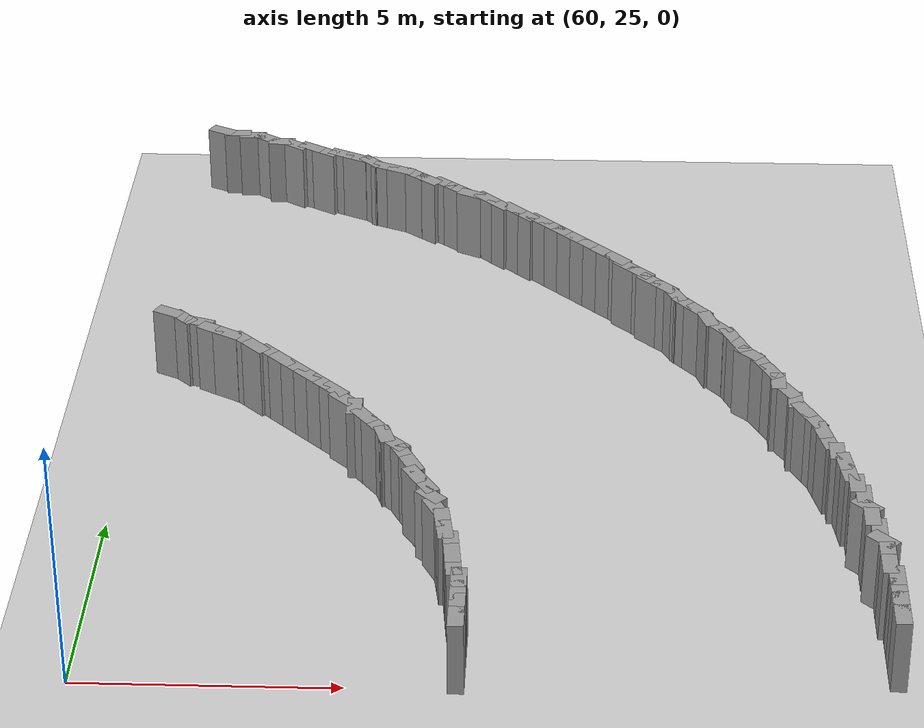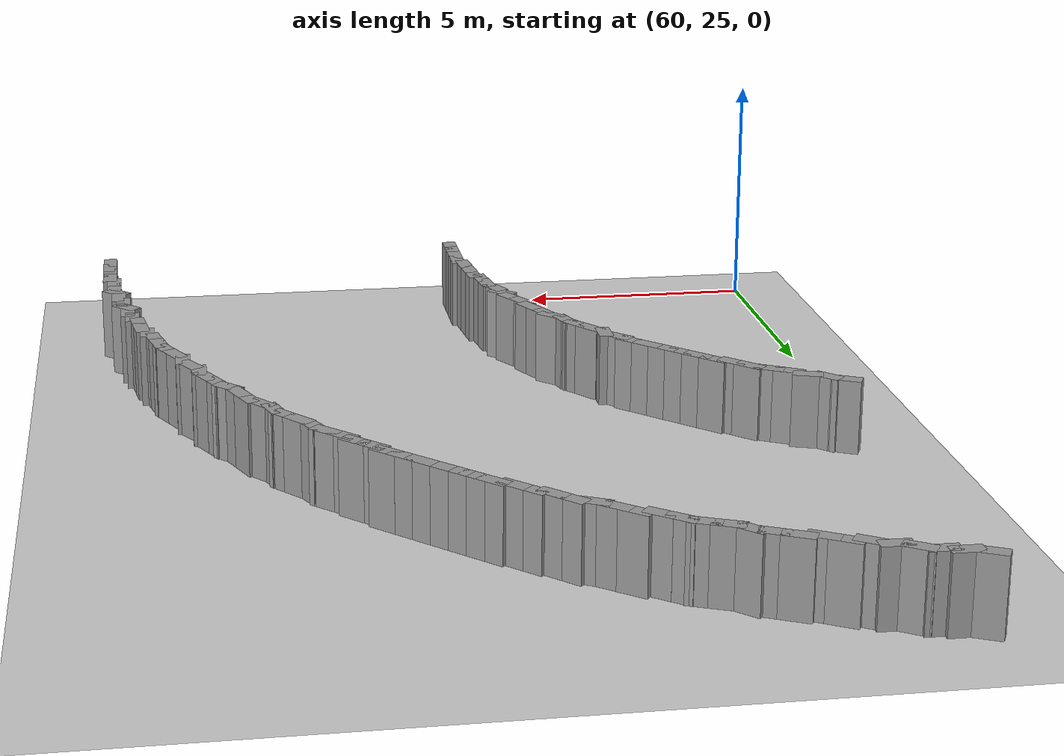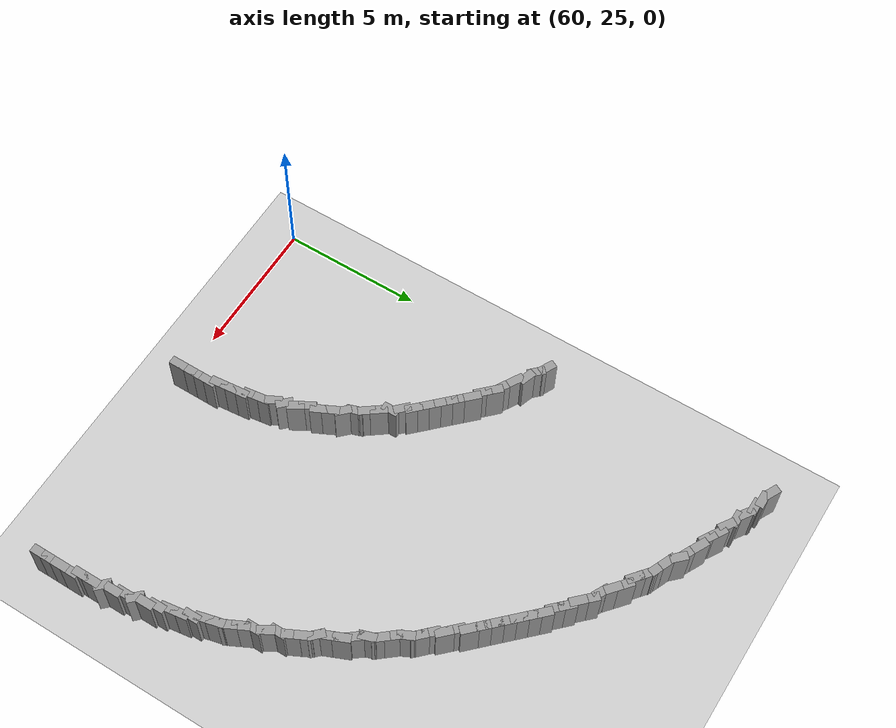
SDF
<sdf version="1.5">
 <world name="test_figure8">
  <include><uri>model://sun</uri></include>
  <include><uri>model://ground_plane</uri></include>
  <model name="curbL_261">
   <static>true</static>
   <pose>74.900 25.519 0.750 0 0 1.571</pose>
   <link name="link">
    <collision name="collision"><geometry><box><size>0.600 0.300 1.500</size></box></geometry></collision>
    <visual name="visual">
     <geometry><box><size>0.600 0.300 1.500</size></box></geometry>
     <material><ambient>0.6 0.6 0.6 1</ambient><diffuse>0.6 0.6 0.6 1</diffuse></material>
    </visual>
   </link>
  </model>
  <model name="curbL_262">
   <static>true</static>
   <pose>74.900 25.919 0.750 0 0 1.571</pose>
   <link name="link">
    <collision name="collision"><geometry><box><size>0.600 0.300 1.500</size></box></geometry></collision>
    <visual name="visual">
     <geometry><box><size>0.600 0.300 1.500</size></box></geometry>
     <material><ambient>0.6 0.6 0.6 1</ambient><diffuse>0.6 0.6 0.6 1</diffuse></material>
    </visual>
   </link>
  </model>
  <model name="curbL_263">
   <static>true</static>
   <pose>74.900 26.319 0.750 0 0 1.571</pose>
   <link name="link">
    <collision name="collision"><geometry><box><size>0.600 0.300 1.500</size></box></geometry></collision>
    <visual name="visual">
     <geometry><box><size>0.600 0.300 1.500</size></box></geometry>
     <material><ambient>0.6 0.6 0.6 1</ambient><diffuse>0.6 0.6 0.6 1</diffuse></material>
    </visual>
   </link>
  </model>
  <model name="curbL_264">
   <static>true</static>
   <pose>74.900 26.719 0.750 0 0 1.571</pose>
   <link name="link">
    <collision name="collision"><geometry><box><size>0.600 0.300 1.500</size></box></geometry></collision>
    <visual name="visual">
     <geometry><box><size>0.600 0.300 1.500</size></box></geometry>
     <material><ambient>0.6 0.6 0.6 1</ambient><diffuse>0.6 0.6 0.6 1</diffuse></material>
    </visual>
   </link>
  </model>
  <model name="curbL_265">
   <static>true</static>
   <pose>74.800 27.078 0.750 0 0 1.571</pose>
   <link name="link">
    <collision name="collision"><geometry><box><size>0.600 0.300 1.500</size></box></geometry></collision>
    <visual name="visual">
     <geometry><box><size>0.600 0.300 1.500</size></box></geometry>
     <material><ambient>0.6 0.6 0.6 1</ambient><diffuse>0.6 0.6 0.6 1</diffuse></material>
    </visual>
   </link>
  </model>
  <model name="curbL_266">
   <static>true</static>
   <pose>74.800 27.478 0.750 0 0 1.571</pose>
   <link name="link">
    <collision name="collision"><geometry><box><size>0.600 0.300 1.500</size></box></geometry></collision>
    <visual name="visual">
     <geometry><box><size>0.600 0.300 1.500</size></box></geometry>
     <material><ambient>0.6 0.6 0.6 1</ambient><diffuse>0.6 0.6 0.6 1</diffuse></material>
    </visual>
   </link>
  </model>
  <model name="curbL_267">
   <static>true</static>
   <pose>74.745 27.855 0.750 0 0 2.356</pose>
   <link name="link">
    <collision name="collision"><geometry><box><size>0.600 0.300 1.500</size></box></geometry></collision>
    <visual name="visual">
     <geometry><box><size>0.600 0.300 1.500</size></box></geometry>
     <material><ambient>0.6 0.6 0.6 1</ambient><diffuse>0.6 0.6 0.6 1</diffuse></material>
    </visual>
   </link>
  </model>
  <model name="curbL_268">
   <static>true</static>
   <pose>74.700 28.236 0.750 0 0 1.571</pose>
   <link name="link">
    <collision name="collision"><geometry><box><size>0.600 0.300 1.500</size></box></geometry></collision>
    <visual name="visual">
     <geometry><box><size>0.600 0.300 1.500</size></box></geometry>
     <material><ambient>0.6 0.6 0.6 1</ambient><diffuse>0.6 0.6 0.6 1</diffuse></material>
    </visual>
   </link>
  </model>
  <model name="curbL_269">
   <static>true</static>
   <pose>74.600 28.595 0.750 0 0 1.571</pose>
   <link name="link">
    <collision name="collision"><geometry><box><size>0.600 0.300 1.500</size></box></geometry></collision>
    <visual name="visual">
     <geometry><box><size>0.600 0.300 1.500</size></box></geometry>
     <material><ambient>0.6 0.6 0.6 1</ambient><diffuse>0.6 0.6 0.6 1</diffuse></material>
    </visual>
   </link>
  </model>
  <model name="curbL_270">
   <static>true</static>
   <pose>74.533 28.967 0.750 0 0 2.356</pose>
   <link name="link">
    <collision name="collision"><geometry><box><size>0.600 0.300 1.500</size></box></geometry></collision>
    <visual name="visual">
     <geometry><box><size>0.600 0.300 1.500</size></box></geometry>
     <material><ambient>0.6 0.6 0.6 1</ambient><diffuse>0.6 0.6 0.6 1</diffuse></material>
    </visual>
   </link>
  </model>
  <model name="curbL_271">
   <static>true</static>
   <pose>74.500 29.353 0.750 0 0 1.571</pose>
   <link name="link">
    <collision name="collision"><geometry><box><size>0.600 0.300 1.500</size></box></geometry></collision>
    <visual name="visual">
     <geometry><box><size>0.600 0.300 1.500</size></box></geometry>
     <material><ambient>0.6 0.6 0.6 1</ambient><diffuse>0.6 0.6 0.6 1</diffuse></material>
    </visual>
   </link>
  </model>
  <model name="curbL_272">
   <static>true</static>
   <pose>74.400 29.712 0.750 0 0 1.571</pose>
   <link name="link">
    <collision name="collision"><geometry><box><size>0.600 0.300 1.500</size></box></geometry></collision>
    <visual name="visual">
     <geometry><box><size>0.600 0.300 1.500</size></box></geometry>
     <material><ambient>0.6 0.6 0.6 1</ambient><diffuse>0.6 0.6 0.6 1</diffuse></material>
    </visual>
   </link>
  </model>
  <model name="curbL_273">
   <static>true</static>
   <pose>74.276 30.069 0.750 0 0 1.713</pose>
   <link name="link">
    <collision name="collision"><geometry><box><size>0.600 0.300 1.500</size></box></geometry></collision>
    <visual name="visual">
     <geometry><box><size>0.600 0.300 1.500</size></box></geometry>
     <material><ambient>0.6 0.6 0.6 1</ambient><diffuse>0.6 0.6 0.6 1</diffuse></material>
    </visual>
   </link>
  </model>
  <model name="curbL_274">
   <static>true</static>
   <pose>74.219 30.465 0.750 0 0 1.713</pose>
   <link name="link">
    <collision name="collision"><geometry><box><size>0.600 0.300 1.500</size></box></geometry></collision>
    <visual name="visual">
     <geometry><box><size>0.600 0.300 1.500</size></box></geometry>
     <material><ambient>0.6 0.6 0.6 1</ambient><diffuse>0.6 0.6 0.6 1</diffuse></material>
    </visual>
   </link>
  </model>
  <model name="curbL_275">
   <static>true</static>
   <pose>74.100 30.822 0.750 0 0 1.571</pose>
   <link name="link">
    <collision name="collision"><geometry><box><size>0.600 0.300 1.500</size></box></geometry></collision>
    <visual name="visual">
     <geometry><box><size>0.600 0.300 1.500</size></box></geometry>
     <material><ambient>0.6 0.6 0.6 1</ambient><diffuse>0.6 0.6 0.6 1</diffuse></material>
    </visual>
   </link>
  </model>
  <model name="curbL_276">
   <static>true</static>
   <pose>73.956 31.175 0.750 0 0 1.816</pose>
   <link name="link">
    <collision name="collision"><geometry><box><size>0.600 0.300 1.500</size></box></geometry></collision>
    <visual name="visual">
     <geometry><box><size>0.600 0.300 1.500</size></box></geometry>
     <material><ambient>0.6 0.6 0.6 1</ambient><diffuse>0.6 0.6 0.6 1</diffuse></material>
    </visual>
   </link>
  </model>
  <model name="curbL_277">
   <static>true</static>
   <pose>73.859 31.563 0.750 0 0 1.816</pose>
   <link name="link">
    <collision name="collision"><geometry><box><size>0.600 0.300 1.500</size></box></geometry></collision>
    <visual name="visual">
     <geometry><box><size>0.600 0.300 1.500</size></box></geometry>
     <material><ambient>0.6 0.6 0.6 1</ambient><diffuse>0.6 0.6 0.6 1</diffuse></material>
    </visual>
   </link>
  </model>
  <model name="curbL_278">
   <static>true</static>
   <pose>73.730 31.939 0.750 0 0 2.034</pose>
   <link name="link">
    <collision name="collision"><geometry><box><size>0.600 0.300 1.500</size></box></geometry></collision>
    <visual name="visual">
     <geometry><box><size>0.600 0.300 1.500</size></box></geometry>
     <material><ambient>0.6 0.6 0.6 1</ambient><diffuse>0.6 0.6 0.6 1</diffuse></material>
    </visual>
   </link>
  </model>
  <model name="curbL_279">
   <static>true</static>
   <pose>73.551 32.297 0.750 0 0 2.034</pose>
   <link name="link">
    <collision name="collision"><geometry><box><size>0.600 0.300 1.500</size></box></geometry></collision>
    <visual name="visual">
     <geometry><box><size>0.600 0.300 1.500</size></box></geometry>
     <material><ambient>0.6 0.6 0.6 1</ambient><diffuse>0.6 0.6 0.6 1</diffuse></material>
    </visual>
   </link>
  </model>
  <model name="curbL_280">
   <static>true</static>
   <pose>73.400 32.661 0.750 0 0 1.571</pose>
   <link name="link">
    <collision name="collision"><geometry><box><size>0.600 0.300 1.500</size></box></geometry></collision>
    <visual name="visual">
     <geometry><box><size>0.600 0.300 1.500</size></box></geometry>
     <material><ambient>0.6 0.6 0.6 1</ambient><diffuse>0.6 0.6 0.6 1</diffuse></material>
    </visual>
   </link>
  </model>
  <model name="curbL_281">
   <static>true</static>
   <pose>73.266 33.024 0.750 0 0 2.111</pose>
   <link name="link">
    <collision name="collision"><geometry><box><size>0.600 0.300 1.500</size></box></geometry></collision>
    <visual name="visual">
     <geometry><box><size>0.600 0.300 1.500</size></box></geometry>
     <material><ambient>0.6 0.6 0.6 1</ambient><diffuse>0.6 0.6 0.6 1</diffuse></material>
    </visual>
   </link>
  </model>
  <model name="curbL_282">
   <static>true</static>
   <pose>73.100 33.378 0.750 0 0 1.571</pose>
   <link name="link">
    <collision name="collision"><geometry><box><size>0.600 0.300 1.500</size></box></geometry></collision>
    <visual name="visual">
     <geometry><box><size>0.600 0.300 1.500</size></box></geometry>
     <material><ambient>0.6 0.6 0.6 1</ambient><diffuse>0.6 0.6 0.6 1</diffuse></material>
    </visual>
   </link>
  </model>
  <model name="curbL_283">
   <static>true</static>
   <pose>72.976 33.749 0.750 0 0 2.034</pose>
   <link name="link">
    <collision name="collision"><geometry><box><size>0.600 0.300 1.500</size></box></geometry></collision>
    <visual name="visual">
     <geometry><box><size>0.600 0.300 1.500</size></box></geometry>
     <material><ambient>0.6 0.6 0.6 1</ambient><diffuse>0.6 0.6 0.6 1</diffuse></material>
    </visual>
   </link>
  </model>
  <model name="curbL_284">
   <static>true</static>
   <pose>72.797 34.107 0.750 0 0 2.034</pose>
   <link name="link">
    <collision name="collision"><geometry><box><size>0.600 0.300 1.500</size></box></geometry></collision>
    <visual name="visual">
     <geometry><box><size>0.600 0.300 1.500</size></box></geometry>
     <material><ambient>0.6 0.6 0.6 1</ambient><diffuse>0.6 0.6 0.6 1</diffuse></material>
    </visual>
   </link>
  </model>
  <model name="curbL_285">
   <static>true</static>
   <pose>72.570 34.430 0.750 0 0 2.356</pose>
   <link name="link">
    <collision name="collision"><geometry><box><size>0.600 0.300 1.500</size></box></geometry></collision>
    <visual name="visual">
     <geometry><box><size>0.600 0.300 1.500</size></box></geometry>
     <material><ambient>0.6 0.6 0.6 1</ambient><diffuse>0.6 0.6 0.6 1</diffuse></material>
    </visual>
   </link>
  </model>
  <model name="curbL_286">
   <static>true</static>
   <pose>72.381 34.777 0.750 0 0 1.976</pose>
   <link name="link">
    <collision name="collision"><geometry><box><size>0.600 0.300 1.500</size></box></geometry></collision>
    <visual name="visual">
     <geometry><box><size>0.600 0.300 1.500</size></box></geometry>
     <material><ambient>0.6 0.6 0.6 1</ambient><diffuse>0.6 0.6 0.6 1</diffuse></material>
    </visual>
   </link>
  </model>
  <model name="curbL_287">
   <static>true</static>
   <pose>72.224 35.144 0.750 0 0 1.976</pose>
   <link name="link">
    <collision name="collision"><geometry><box><size>0.600 0.300 1.500</size></box></geometry></collision>
    <visual name="visual">
     <geometry><box><size>0.600 0.300 1.500</size></box></geometry>
     <material><ambient>0.6 0.6 0.6 1</ambient><diffuse>0.6 0.6 0.6 1</diffuse></material>
    </visual>
   </link>
  </model>
  <model name="curbL_288">
   <static>true</static>
   <pose>71.988 35.465 0.750 0 0 2.246</pose>
   <link name="link">
    <collision name="collision"><geometry><box><size>0.600 0.300 1.500</size></box></geometry></collision>
    <visual name="visual">
     <geometry><box><size>0.600 0.300 1.500</size></box></geometry>
     <material><ambient>0.6 0.6 0.6 1</ambient><diffuse>0.6 0.6 0.6 1</diffuse></material>
    </visual>
   </link>
  </model>
  <model name="curbL_289">
   <static>true</static>
   <pose>71.769 35.794 0.750 0 0 1.893</pose>
   <link name="link">
    <collision name="collision"><geometry><box><size>0.600 0.300 1.500</size></box></geometry></collision>
    <visual name="visual">
     <geometry><box><size>0.600 0.300 1.500</size></box></geometry>
     <material><ambient>0.6 0.6 0.6 1</ambient><diffuse>0.6 0.6 0.6 1</diffuse></material>
    </visual>
   </link>
  </model>
  <model name="curbL_290">
   <static>true</static>
   <pose>71.583 36.141 0.750 0 0 2.266</pose>
   <link name="link">
    <collision name="collision"><geometry><box><size>0.600 0.300 1.500</size></box></geometry></collision>
    <visual name="visual">
     <geometry><box><size>0.600 0.300 1.500</size></box></geometry>
     <material><ambient>0.6 0.6 0.6 1</ambient><diffuse>0.6 0.6 0.6 1</diffuse></material>
    </visual>
   </link>
  </model>
  <model name="curbL_291">
   <static>true</static>
   <pose>71.327 36.448 0.750 0 0 2.266</pose>
   <link name="link">
    <collision name="collision"><geometry><box><size>0.600 0.300 1.500</size></box></geometry></collision>
    <visual name="visual">
     <geometry><box><size>0.600 0.300 1.500</size></box></geometry>
     <material><ambient>0.6 0.6 0.6 1</ambient><diffuse>0.6 0.6 0.6 1</diffuse></material>
    </visual>
   </link>
  </model>
  <model name="curbL_292">
   <static>true</static>
   <pose>71.110 36.781 0.750 0 0 2.034</pose>
   <link name="link">
    <collision name="collision"><geometry><box><size>0.600 0.300 1.500</size></box></geometry></collision>
    <visual name="visual">
     <geometry><box><size>0.600 0.300 1.500</size></box></geometry>
     <material><ambient>0.6 0.6 0.6 1</ambient><diffuse>0.6 0.6 0.6 1</diffuse></material>
    </visual>
   </link>
  </model>
  <model name="curbL_293">
   <static>true</static>
   <pose>70.891 37.109 0.750 0 0 2.356</pose>
   <link name="link">
    <collision name="collision"><geometry><box><size>0.600 0.300 1.500</size></box></geometry></collision>
    <visual name="visual">
     <geometry><box><size>0.600 0.300 1.500</size></box></geometry>
     <material><ambient>0.6 0.6 0.6 1</ambient><diffuse>0.6 0.6 0.6 1</diffuse></material>
    </visual>
   </link>
  </model>
  <model name="curbL_294">
   <static>true</static>
   <pose>70.608 37.392 0.750 0 0 2.356</pose>
   <link name="link">
    <collision name="collision"><geometry><box><size>0.600 0.300 1.500</size></box></geometry></collision>
    <visual name="visual">
     <geometry><box><size>0.600 0.300 1.500</size></box></geometry>
     <material><ambient>0.6 0.6 0.6 1</ambient><diffuse>0.6 0.6 0.6 1</diffuse></material>
    </visual>
   </link>
  </model>
  <model name="curbL_295">
   <static>true</static>
   <pose>70.396 37.704 0.750 0 0 2.356</pose>
   <link name="link">
    <collision name="collision"><geometry><box><size>0.600 0.300 1.500</size></box></geometry></collision>
    <visual name="visual">
     <geometry><box><size>0.600 0.300 1.500</size></box></geometry>
     <material><ambient>0.6 0.6 0.6 1</ambient><diffuse>0.6 0.6 0.6 1</diffuse></material>
    </visual>
   </link>
  </model>
  <model name="curbL_296">
   <static>true</static>
   <pose>70.113 37.987 0.750 0 0 2.356</pose>
   <link name="link">
    <collision name="collision"><geometry><box><size>0.600 0.300 1.500</size></box></geometry></collision>
    <visual name="visual">
     <geometry><box><size>0.600 0.300 1.500</size></box></geometry>
     <material><ambient>0.6 0.6 0.6 1</ambient><diffuse>0.6 0.6 0.6 1</diffuse></material>
    </visual>
   </link>
  </model>
  <model name="curbL_297">
   <static>true</static>
   <pose>69.901 38.299 0.750 0 0 2.356</pose>
   <link name="link">
    <collision name="collision"><geometry><box><size>0.600 0.300 1.500</size></box></geometry></collision>
    <visual name="visual">
     <geometry><box><size>0.600 0.300 1.500</size></box></geometry>
     <material><ambient>0.6 0.6 0.6 1</ambient><diffuse>0.6 0.6 0.6 1</diffuse></material>
    </visual>
   </link>
  </model>
  <model name="curbL_298">
   <static>true</static>
   <pose>69.618 38.582 0.750 0 0 2.356</pose>
   <link name="link">
    <collision name="collision"><geometry><box><size>0.600 0.300 1.500</size></box></geometry></collision>
    <visual name="visual">
     <geometry><box><size>0.600 0.300 1.500</size></box></geometry>
     <material><ambient>0.6 0.6 0.6 1</ambient><diffuse>0.6 0.6 0.6 1</diffuse></material>
    </visual>
   </link>
  </model>
  <model name="curbL_299">
   <static>true</static>
   <pose>69.335 38.865 0.750 0 0 2.356</pose>
   <link name="link">
    <collision name="collision"><geometry><box><size>0.600 0.300 1.500</size></box></geometry></collision>
    <visual name="visual">
     <geometry><box><size>0.600 0.300 1.500</size></box></geometry>
     <material><ambient>0.6 0.6 0.6 1</ambient><diffuse>0.6 0.6 0.6 1</diffuse></material>
    </visual>
   </link>
  </model>
  <model name="curbL_300">
   <static>true</static>
   <pose>69.052 39.148 0.750 0 0 2.356</pose>
   <link name="link">
    <collision name="collision"><geometry><box><size>0.600 0.300 1.500</size></box></geometry></collision>
    <visual name="visual">
     <geometry><box><size>0.600 0.300 1.500</size></box></geometry>
     <material><ambient>0.6 0.6 0.6 1</ambient><diffuse>0.6 0.6 0.6 1</diffuse></material>
    </visual>
   </link>
  </model>
  <model name="curbL_301">
   <static>true</static>
   <pose>68.769 39.431 0.750 0 0 2.356</pose>
   <link name="link">
    <collision name="collision"><geometry><box><size>0.600 0.300 1.500</size></box></geometry></collision>
    <visual name="visual">
     <geometry><box><size>0.600 0.300 1.500</size></box></geometry>
     <material><ambient>0.6 0.6 0.6 1</ambient><diffuse>0.6 0.6 0.6 1</diffuse></material>
    </visual>
   </link>
  </model>
  <model name="curbL_302">
   <static>true</static>
   <pose>68.486 39.714 0.750 0 0 2.356</pose>
   <link name="link">
    <collision name="collision"><geometry><box><size>0.600 0.300 1.500</size></box></geometry></collision>
    <visual name="visual">
     <geometry><box><size>0.600 0.300 1.500</size></box></geometry>
     <material><ambient>0.6 0.6 0.6 1</ambient><diffuse>0.6 0.6 0.6 1</diffuse></material>
    </visual>
   </link>
  </model>
  <model name="curbL_303">
   <static>true</static>
   <pose>68.204 39.996 0.750 0 0 2.356</pose>
   <link name="link">
    <collision name="collision"><geometry><box><size>0.600 0.300 1.500</size></box></geometry></collision>
    <visual name="visual">
     <geometry><box><size>0.600 0.300 1.500</size></box></geometry>
     <material><ambient>0.6 0.6 0.6 1</ambient><diffuse>0.6 0.6 0.6 1</diffuse></material>
    </visual>
   </link>
  </model>
  <model name="curbL_304">
   <static>true</static>
   <pose>67.891 40.209 0.750 0 0 2.356</pose>
   <link name="link">
    <collision name="collision"><geometry><box><size>0.600 0.300 1.500</size></box></geometry></collision>
    <visual name="visual">
     <geometry><box><size>0.600 0.300 1.500</size></box></geometry>
     <material><ambient>0.6 0.6 0.6 1</ambient><diffuse>0.6 0.6 0.6 1</diffuse></material>
    </visual>
   </link>
  </model>
  <model name="curbL_305">
   <static>true</static>
   <pose>67.609 40.491 0.750 0 0 2.356</pose>
   <link name="link">
    <collision name="collision"><geometry><box><size>0.600 0.300 1.500</size></box></geometry></collision>
    <visual name="visual">
     <geometry><box><size>0.600 0.300 1.500</size></box></geometry>
     <material><ambient>0.6 0.6 0.6 1</ambient><diffuse>0.6 0.6 0.6 1</diffuse></material>
    </visual>
   </link>
  </model>
  <model name="curbL_306">
   <static>true</static>
   <pose>67.297 40.703 0.750 0 0 2.356</pose>
   <link name="link">
    <collision name="collision"><geometry><box><size>0.600 0.300 1.500</size></box></geometry></collision>
    <visual name="visual">
     <geometry><box><size>0.600 0.300 1.500</size></box></geometry>
     <material><ambient>0.6 0.6 0.6 1</ambient><diffuse>0.6 0.6 0.6 1</diffuse></material>
    </visual>
   </link>
  </model>
  <model name="curbL_307">
   <static>true</static>
   <pose>67.014 40.986 0.750 0 0 2.356</pose>
   <link name="link">
    <collision name="collision"><geometry><box><size>0.600 0.300 1.500</size></box></geometry></collision>
    <visual name="visual">
     <geometry><box><size>0.600 0.300 1.500</size></box></geometry>
     <material><ambient>0.6 0.6 0.6 1</ambient><diffuse>0.6 0.6 0.6 1</diffuse></material>
    </visual>
   </link>
  </model>
  <model name="curbL_308">
   <static>true</static>
   <pose>66.660 41.170 0.750 0 0 2.678</pose>
   <link name="link">
    <collision name="collision"><geometry><box><size>0.600 0.300 1.500</size></box></geometry></collision>
    <visual name="visual">
     <geometry><box><size>0.600 0.300 1.500</size></box></geometry>
     <material><ambient>0.6 0.6 0.6 1</ambient><diffuse>0.6 0.6 0.6 1</diffuse></material>
    </visual>
   </link>
  </model>
  <model name="curbL_309">
   <static>true</static>
   <pose>66.344 41.413 0.750 0 0 2.447</pose>
   <link name="link">
    <collision name="collision"><geometry><box><size>0.600 0.300 1.500</size></box></geometry></collision>
    <visual name="visual">
     <geometry><box><size>0.600 0.300 1.500</size></box></geometry>
     <material><ambient>0.6 0.6 0.6 1</ambient><diffuse>0.6 0.6 0.6 1</diffuse></material>
    </visual>
   </link>
  </model>
  <model name="curbL_310">
   <static>true</static>
   <pose>66.037 41.670 0.750 0 0 2.447</pose>
   <link name="link">
    <collision name="collision"><geometry><box><size>0.600 0.300 1.500</size></box></geometry></collision>
    <visual name="visual">
     <geometry><box><size>0.600 0.300 1.500</size></box></geometry>
     <material><ambient>0.6 0.6 0.6 1</ambient><diffuse>0.6 0.6 0.6 1</diffuse></material>
    </visual>
   </link>
  </model>
  <model name="curbL_311">
   <static>true</static>
   <pose>65.672 41.823 0.750 0 0 2.467</pose>
   <link name="link">
    <collision name="collision"><geometry><box><size>0.600 0.300 1.500</size></box></geometry></collision>
    <visual name="visual">
     <geometry><box><size>0.600 0.300 1.500</size></box></geometry>
     <material><ambient>0.6 0.6 0.6 1</ambient><diffuse>0.6 0.6 0.6 1</diffuse></material>
    </visual>
   </link>
  </model>
  <model name="curbL_312">
   <static>true</static>
   <pose>65.359 42.072 0.750 0 0 2.467</pose>
   <link name="link">
    <collision name="collision"><geometry><box><size>0.600 0.300 1.500</size></box></geometry></collision>
    <visual name="visual">
     <geometry><box><size>0.600 0.300 1.500</size></box></geometry>
     <material><ambient>0.6 0.6 0.6 1</ambient><diffuse>0.6 0.6 0.6 1</diffuse></material>
    </visual>
   </link>
  </model>
  <model name="curbL_313">
   <static>true</static>
   <pose>65.020 42.277 0.750 0 0 2.737</pose>
   <link name="link">
    <collision name="collision"><geometry><box><size>0.600 0.300 1.500</size></box></geometry></collision>
    <visual name="visual">
     <geometry><box><size>0.600 0.300 1.500</size></box></geometry>
     <material><ambient>0.6 0.6 0.6 1</ambient><diffuse>0.6 0.6 0.6 1</diffuse></material>
    </visual>
   </link>
  </model>
  <model name="curbL_314">
   <static>true</static>
   <pose>64.652 42.435 0.750 0 0 2.737</pose>
   <link name="link">
    <collision name="collision"><geometry><box><size>0.600 0.300 1.500</size></box></geometry></collision>
    <visual name="visual">
     <geometry><box><size>0.600 0.300 1.500</size></box></geometry>
     <material><ambient>0.6 0.6 0.6 1</ambient><diffuse>0.6 0.6 0.6 1</diffuse></material>
    </visual>
   </link>
  </model>
  <model name="curbL_315">
   <static>true</static>
   <pose>64.334 42.666 0.750 0 0 2.356</pose>
   <link name="link">
    <collision name="collision"><geometry><box><size>0.600 0.300 1.500</size></box></geometry></collision>
    <visual name="visual">
     <geometry><box><size>0.600 0.300 1.500</size></box></geometry>
     <material><ambient>0.6 0.6 0.6 1</ambient><diffuse>0.6 0.6 0.6 1</diffuse></material>
    </visual>
   </link>
  </model>
  <model name="curbL_316">
   <static>true</static>
   <pose>63.986 42.857 0.750 0 0 2.678</pose>
   <link name="link">
    <collision name="collision"><geometry><box><size>0.600 0.300 1.500</size></box></geometry></collision>
    <visual name="visual">
     <geometry><box><size>0.600 0.300 1.500</size></box></geometry>
     <material><ambient>0.6 0.6 0.6 1</ambient><diffuse>0.6 0.6 0.6 1</diffuse></material>
    </visual>
   </link>
  </model>
  <model name="curbL_317">
   <static>true</static>
   <pose>63.628 43.036 0.750 0 0 2.678</pose>
   <link name="link">
    <collision name="collision"><geometry><box><size>0.600 0.300 1.500</size></box></geometry></collision>
    <visual name="visual">
     <geometry><box><size>0.600 0.300 1.500</size></box></geometry>
     <material><ambient>0.6 0.6 0.6 1</ambient><diffuse>0.6 0.6 0.6 1</diffuse></material>
    </visual>
   </link>
  </model>
  <model name="curbL_318">
   <static>true</static>
   <pose>63.251 43.129 0.750 0 0 2.601</pose>
   <link name="link">
    <collision name="collision"><geometry><box><size>0.600 0.300 1.500</size></box></geometry></collision>
    <visual name="visual">
     <geometry><box><size>0.600 0.300 1.500</size></box></geometry>
     <material><ambient>0.6 0.6 0.6 1</ambient><diffuse>0.6 0.6 0.6 1</diffuse></material>
    </visual>
   </link>
  </model>
  <model name="curbL_319">
   <static>true</static>
   <pose>62.908 43.335 0.750 0 0 2.601</pose>
   <link name="link">
    <collision name="collision"><geometry><box><size>0.600 0.300 1.500</size></box></geometry></collision>
    <visual name="visual">
     <geometry><box><size>0.600 0.300 1.500</size></box></geometry>
     <material><ambient>0.6 0.6 0.6 1</ambient><diffuse>0.6 0.6 0.6 1</diffuse></material>
    </visual>
   </link>
  </model>
  <model name="curbL_320">
   <static>true</static>
   <pose>62.538 43.441 0.750 0 0 2.554</pose>
   <link name="link">
    <collision name="collision"><geometry><box><size>0.600 0.300 1.500</size></box></geometry></collision>
    <visual name="visual">
     <geometry><box><size>0.600 0.300 1.500</size></box></geometry>
     <material><ambient>0.6 0.6 0.6 1</ambient><diffuse>0.6 0.6 0.6 1</diffuse></material>
    </visual>
   </link>
  </model>
  <model name="curbL_321">
   <static>true</static>
   <pose>62.187 43.600 0.750 0 0 3.142</pose>
   <link name="link">
    <collision name="collision"><geometry><box><size>0.600 0.300 1.500</size></box></geometry></collision>
    <visual name="visual">
     <geometry><box><size>0.600 0.300 1.500</size></box></geometry>
     <material><ambient>0.6 0.6 0.6 1</ambient><diffuse>0.6 0.6 0.6 1</diffuse></material>
    </visual>
   </link>
  </model>
  <model name="curbL_322">
   <static>true</static>
   <pose>61.839 43.774 0.750 0 0 2.554</pose>
   <link name="link">
    <collision name="collision"><geometry><box><size>0.600 0.300 1.500</size></box></geometry></collision>
    <visual name="visual">
     <geometry><box><size>0.600 0.300 1.500</size></box></geometry>
     <material><ambient>0.6 0.6 0.6 1</ambient><diffuse>0.6 0.6 0.6 1</diffuse></material>
    </visual>
   </link>
  </model>
  <model name="curbL_323">
   <static>true</static>
   <pose>61.489 43.900 0.750 0 0 3.142</pose>
   <link name="link">
    <collision name="collision"><geometry><box><size>0.600 0.300 1.500</size></box></geometry></collision>
    <visual name="visual">
     <geometry><box><size>0.600 0.300 1.500</size></box></geometry>
     <material><ambient>0.6 0.6 0.6 1</ambient><diffuse>0.6 0.6 0.6 1</diffuse></material>
    </visual>
   </link>
  </model>
  <model name="curbL_324">
   <static>true</static>
   <pose>61.130 44.000 0.750 0 0 3.142</pose>
   <link name="link">
    <collision name="collision"><geometry><box><size>0.600 0.300 1.500</size></box></geometry></collision>
    <visual name="visual">
     <geometry><box><size>0.600 0.300 1.500</size></box></geometry>
     <material><ambient>0.6 0.6 0.6 1</ambient><diffuse>0.6 0.6 0.6 1</diffuse></material>
    </visual>
   </link>
  </model>
  <model name="curbL_325">
   <static>true</static>
   <pose>60.759 44.121 0.750 0 0 2.678</pose>
   <link name="link">
    <collision name="collision"><geometry><box><size>0.600 0.300 1.500</size></box></geometry></collision>
    <visual name="visual">
     <geometry><box><size>0.600 0.300 1.500</size></box></geometry>
     <material><ambient>0.6 0.6 0.6 1</ambient><diffuse>0.6 0.6 0.6 1</diffuse></material>
    </visual>
   </link>
  </model>
  <model name="curbR_15">
   <static>true</static>
   <pose>60.576 35.712 0.750 0 0 -0.464</pose>
   <link name="link">
    <collision name="collision"><geometry><box><size>0.600 0.300 1.500</size></box></geometry></collision>
    <visual name="visual">
     <geometry><box><size>0.600 0.300 1.500</size></box></geometry>
     <material><ambient>0.6 0.6 0.6 1</ambient><diffuse>0.6 0.6 0.6 1</diffuse></material>
    </visual>
   </link>
  </model>
  <model name="curbR_16">
   <static>true</static>
   <pose>60.906 35.494 0.750 0 0 -0.785</pose>
   <link name="link">
    <collision name="collision"><geometry><box><size>0.600 0.300 1.500</size></box></geometry></collision>
    <visual name="visual">
     <geometry><box><size>0.600 0.300 1.500</size></box></geometry>
     <material><ambient>0.6 0.6 0.6 1</ambient><diffuse>0.6 0.6 0.6 1</diffuse></material>
    </visual>
   </link>
  </model>
  <model name="curbR_17">
   <static>true</static>
   <pose>61.253 35.316 0.750 0 0 -0.322</pose>
   <link name="link">
    <collision name="collision"><geometry><box><size>0.600 0.300 1.500</size></box></geometry></collision>
    <visual name="visual">
     <geometry><box><size>0.600 0.300 1.500</size></box></geometry>
     <material><ambient>0.6 0.6 0.6 1</ambient><diffuse>0.6 0.6 0.6 1</diffuse></material>
    </visual>
   </link>
  </model>
  <model name="curbR_18">
   <static>true</static>
   <pose>61.559 35.067 0.750 0 0 -0.519</pose>
   <link name="link">
    <collision name="collision"><geometry><box><size>0.600 0.300 1.500</size></box></geometry></collision>
    <visual name="visual">
     <geometry><box><size>0.600 0.300 1.500</size></box></geometry>
     <material><ambient>0.6 0.6 0.6 1</ambient><diffuse>0.6 0.6 0.6 1</diffuse></material>
    </visual>
   </link>
  </model>
  <model name="curbR_19">
   <static>true</static>
   <pose>61.906 34.868 0.750 0 0 -0.519</pose>
   <link name="link">
    <collision name="collision"><geometry><box><size>0.600 0.300 1.500</size></box></geometry></collision>
    <visual name="visual">
     <geometry><box><size>0.600 0.300 1.500</size></box></geometry>
     <material><ambient>0.6 0.6 0.6 1</ambient><diffuse>0.6 0.6 0.6 1</diffuse></material>
    </visual>
   </link>
  </model>
  <model name="curbR_20">
   <static>true</static>
   <pose>62.243 34.657 0.750 0 0 -0.785</pose>
   <link name="link">
    <collision name="collision"><geometry><box><size>0.600 0.300 1.500</size></box></geometry></collision>
    <visual name="visual">
     <geometry><box><size>0.600 0.300 1.500</size></box></geometry>
     <material><ambient>0.6 0.6 0.6 1</ambient><diffuse>0.6 0.6 0.6 1</diffuse></material>
    </visual>
   </link>
  </model>
  <model name="curbR_21">
   <static>true</static>
   <pose>62.526 34.374 0.750 0 0 -0.785</pose>
   <link name="link">
    <collision name="collision"><geometry><box><size>0.600 0.300 1.500</size></box></geometry></collision>
    <visual name="visual">
     <geometry><box><size>0.600 0.300 1.500</size></box></geometry>
     <material><ambient>0.6 0.6 0.6 1</ambient><diffuse>0.6 0.6 0.6 1</diffuse></material>
    </visual>
   </link>
  </model>
  <model name="curbR_22">
   <static>true</static>
   <pose>62.838 34.162 0.750 0 0 -0.785</pose>
   <link name="link">
    <collision name="collision"><geometry><box><size>0.600 0.300 1.500</size></box></geometry></collision>
    <visual name="visual">
     <geometry><box><size>0.600 0.300 1.500</size></box></geometry>
     <material><ambient>0.6 0.6 0.6 1</ambient><diffuse>0.6 0.6 0.6 1</diffuse></material>
    </visual>
   </link>
  </model>
  <model name="curbR_23">
   <static>true</static>
   <pose>63.121 33.879 0.750 0 0 -0.785</pose>
   <link name="link">
    <collision name="collision"><geometry><box><size>0.600 0.300 1.500</size></box></geometry></collision>
    <visual name="visual">
     <geometry><box><size>0.600 0.300 1.500</size></box></geometry>
     <material><ambient>0.6 0.6 0.6 1</ambient><diffuse>0.6 0.6 0.6 1</diffuse></material>
    </visual>
   </link>
  </model>
  <model name="curbR_24">
   <static>true</static>
   <pose>63.404 33.596 0.750 0 0 -0.785</pose>
   <link name="link">
    <collision name="collision"><geometry><box><size>0.600 0.300 1.500</size></box></geometry></collision>
    <visual name="visual">
     <geometry><box><size>0.600 0.300 1.500</size></box></geometry>
     <material><ambient>0.6 0.6 0.6 1</ambient><diffuse>0.6 0.6 0.6 1</diffuse></material>
    </visual>
   </link>
  </model>
  <model name="curbR_25">
   <static>true</static>
   <pose>63.687 33.313 0.750 0 0 -0.785</pose>
   <link name="link">
    <collision name="collision"><geometry><box><size>0.600 0.300 1.500</size></box></geometry></collision>
    <visual name="visual">
     <geometry><box><size>0.600 0.300 1.500</size></box></geometry>
     <material><ambient>0.6 0.6 0.6 1</ambient><diffuse>0.6 0.6 0.6 1</diffuse></material>
    </visual>
   </link>
  </model>
  <model name="curbR_26">
   <static>true</static>
   <pose>63.970 33.030 0.750 0 0 -0.785</pose>
   <link name="link">
    <collision name="collision"><geometry><box><size>0.600 0.300 1.500</size></box></geometry></collision>
    <visual name="visual">
     <geometry><box><size>0.600 0.300 1.500</size></box></geometry>
     <material><ambient>0.6 0.6 0.6 1</ambient><diffuse>0.6 0.6 0.6 1</diffuse></material>
    </visual>
   </link>
  </model>
  <model name="curbR_27">
   <static>true</static>
   <pose>64.252 32.748 0.750 0 0 -0.785</pose>
   <link name="link">
    <collision name="collision"><geometry><box><size>0.600 0.300 1.500</size></box></geometry></collision>
    <visual name="visual">
     <geometry><box><size>0.600 0.300 1.500</size></box></geometry>
     <material><ambient>0.6 0.6 0.6 1</ambient><diffuse>0.6 0.6 0.6 1</diffuse></material>
    </visual>
   </link>
  </model>
  <model name="curbR_28">
   <static>true</static>
   <pose>64.465 32.435 0.750 0 0 -0.785</pose>
   <link name="link">
    <collision name="collision"><geometry><box><size>0.600 0.300 1.500</size></box></geometry></collision>
    <visual name="visual">
     <geometry><box><size>0.600 0.300 1.500</size></box></geometry>
     <material><ambient>0.6 0.6 0.6 1</ambient><diffuse>0.6 0.6 0.6 1</diffuse></material>
    </visual>
   </link>
  </model>
  <model name="curbR_29">
   <static>true</static>
   <pose>64.700 32.133 0.750 0 0 -1.571</pose>
   <link name="link">
    <collision name="collision"><geometry><box><size>0.600 0.300 1.500</size></box></geometry></collision>
    <visual name="visual">
     <geometry><box><size>0.600 0.300 1.500</size></box></geometry>
     <material><ambient>0.6 0.6 0.6 1</ambient><diffuse>0.6 0.6 0.6 1</diffuse></material>
    </visual>
   </link>
  </model>
  <model name="curbR_30">
   <static>true</static>
   <pose>64.920 31.806 0.750 0 0 -0.927</pose>
   <link name="link">
    <collision name="collision"><geometry><box><size>0.600 0.300 1.500</size></box></geometry></collision>
    <visual name="visual">
     <geometry><box><size>0.600 0.300 1.500</size></box></geometry>
     <material><ambient>0.6 0.6 0.6 1</ambient><diffuse>0.6 0.6 0.6 1</diffuse></material>
    </visual>
   </link>
  </model>
  <model name="curbR_31">
   <static>true</static>
   <pose>65.160 31.486 0.750 0 0 -0.927</pose>
   <link name="link">
    <collision name="collision"><geometry><box><size>0.600 0.300 1.500</size></box></geometry></collision>
    <visual name="visual">
     <geometry><box><size>0.600 0.300 1.500</size></box></geometry>
     <material><ambient>0.6 0.6 0.6 1</ambient><diffuse>0.6 0.6 0.6 1</diffuse></material>
    </visual>
   </link>
  </model>
  <model name="curbR_32">
   <static>true</static>
   <pose>65.353 31.141 0.750 0 0 -1.249</pose>
   <link name="link">
    <collision name="collision"><geometry><box><size>0.600 0.300 1.500</size></box></geometry></collision>
    <visual name="visual">
     <geometry><box><size>0.600 0.300 1.500</size></box></geometry>
     <material><ambient>0.6 0.6 0.6 1</ambient><diffuse>0.6 0.6 0.6 1</diffuse></material>
    </visual>
   </link>
  </model>
  <model name="curbR_33">
   <static>true</static>
   <pose>65.577 30.823 0.750 0 0 -0.785</pose>
   <link name="link">
    <collision name="collision"><geometry><box><size>0.600 0.300 1.500</size></box></geometry></collision>
    <visual name="visual">
     <geometry><box><size>0.600 0.300 1.500</size></box></geometry>
     <material><ambient>0.6 0.6 0.6 1</ambient><diffuse>0.6 0.6 0.6 1</diffuse></material>
    </visual>
   </link>
  </model>
  <model name="curbR_34">
   <static>true</static>
   <pose>65.765 30.471 0.750 0 0 -1.107</pose>
   <link name="link">
    <collision name="collision"><geometry><box><size>0.600 0.300 1.500</size></box></geometry></collision>
    <visual name="visual">
     <geometry><box><size>0.600 0.300 1.500</size></box></geometry>
     <material><ambient>0.6 0.6 0.6 1</ambient><diffuse>0.6 0.6 0.6 1</diffuse></material>
    </visual>
   </link>
  </model>
  <model name="curbR_35">
   <static>true</static>
   <pose>65.943 30.113 0.750 0 0 -1.107</pose>
   <link name="link">
    <collision name="collision"><geometry><box><size>0.600 0.300 1.500</size></box></geometry></collision>
    <visual name="visual">
     <geometry><box><size>0.600 0.300 1.500</size></box></geometry>
     <material><ambient>0.6 0.6 0.6 1</ambient><diffuse>0.6 0.6 0.6 1</diffuse></material>
    </visual>
   </link>
  </model>
  <model name="curbR_36">
   <static>true</static>
   <pose>66.038 29.737 0.750 0 0 -1.030</pose>
   <link name="link">
    <collision name="collision"><geometry><box><size>0.600 0.300 1.500</size></box></geometry></collision>
    <visual name="visual">
     <geometry><box><size>0.600 0.300 1.500</size></box></geometry>
     <material><ambient>0.6 0.6 0.6 1</ambient><diffuse>0.6 0.6 0.6 1</diffuse></material>
    </visual>
   </link>
  </model>
  <model name="curbR_37">
   <static>true</static>
   <pose>66.244 29.394 0.750 0 0 -1.030</pose>
   <link name="link">
    <collision name="collision"><geometry><box><size>0.600 0.300 1.500</size></box></geometry></collision>
    <visual name="visual">
     <geometry><box><size>0.600 0.300 1.500</size></box></geometry>
     <material><ambient>0.6 0.6 0.6 1</ambient><diffuse>0.6 0.6 0.6 1</diffuse></material>
    </visual>
   </link>
  </model>
  <model name="curbR_38">
   <static>true</static>
   <pose>66.364 29.036 0.750 0 0 -0.785</pose>
   <link name="link">
    <collision name="collision"><geometry><box><size>0.600 0.300 1.500</size></box></geometry></collision>
    <visual name="visual">
     <geometry><box><size>0.600 0.300 1.500</size></box></geometry>
     <material><ambient>0.6 0.6 0.6 1</ambient><diffuse>0.6 0.6 0.6 1</diffuse></material>
    </visual>
   </link>
  </model>
  <model name="curbR_39">
   <static>true</static>
   <pose>66.467 28.667 0.750 0 0 -1.107</pose>
   <link name="link">
    <collision name="collision"><geometry><box><size>0.600 0.300 1.500</size></box></geometry></collision>
    <visual name="visual">
     <geometry><box><size>0.600 0.300 1.500</size></box></geometry>
     <material><ambient>0.6 0.6 0.6 1</ambient><diffuse>0.6 0.6 0.6 1</diffuse></material>
    </visual>
   </link>
  </model>
  <model name="curbR_40">
   <static>true</static>
   <pose>66.614 28.299 0.750 0 0 -1.429</pose>
   <link name="link">
    <collision name="collision"><geometry><box><size>0.600 0.300 1.500</size></box></geometry></collision>
    <visual name="visual">
     <geometry><box><size>0.600 0.300 1.500</size></box></geometry>
     <material><ambient>0.6 0.6 0.6 1</ambient><diffuse>0.6 0.6 0.6 1</diffuse></material>
    </visual>
   </link>
  </model>
  <model name="curbR_41">
   <static>true</static>
   <pose>66.671 27.903 0.750 0 0 -1.429</pose>
   <link name="link">
    <collision name="collision"><geometry><box><size>0.600 0.300 1.500</size></box></geometry></collision>
    <visual name="visual">
     <geometry><box><size>0.600 0.300 1.500</size></box></geometry>
     <material><ambient>0.6 0.6 0.6 1</ambient><diffuse>0.6 0.6 0.6 1</diffuse></material>
    </visual>
   </link>
  </model>
  <model name="curbR_42">
   <static>true</static>
   <pose>66.805 27.547 0.750 0 0 -1.471</pose>
   <link name="link">
    <collision name="collision"><geometry><box><size>0.600 0.300 1.500</size></box></geometry></collision>
    <visual name="visual">
     <geometry><box><size>0.600 0.300 1.500</size></box></geometry>
     <material><ambient>0.6 0.6 0.6 1</ambient><diffuse>0.6 0.6 0.6 1</diffuse></material>
    </visual>
   </link>
  </model>
  <model name="curbR_43">
   <static>true</static>
   <pose>66.845 27.149 0.750 0 0 -1.471</pose>
   <link name="link">
    <collision name="collision"><geometry><box><size>0.600 0.300 1.500</size></box></geometry></collision>
    <visual name="visual">
     <geometry><box><size>0.600 0.300 1.500</size></box></geometry>
     <material><ambient>0.6 0.6 0.6 1</ambient><diffuse>0.6 0.6 0.6 1</diffuse></material>
    </visual>
   </link>
  </model>
  <model name="curbR_44">
   <static>true</static>
   <pose>66.885 26.751 0.750 0 0 -1.471</pose>
   <link name="link">
    <collision name="collision"><geometry><box><size>0.600 0.300 1.500</size></box></geometry></collision>
    <visual name="visual">
     <geometry><box><size>0.600 0.300 1.500</size></box></geometry>
     <material><ambient>0.6 0.6 0.6 1</ambient><diffuse>0.6 0.6 0.6 1</diffuse></material>
    </visual>
   </link>
  </model>
  <model name="curbR_45">
   <static>true</static>
   <pose>67.000 26.393 0.750 0 0 -1.571</pose>
   <link name="link">
    <collision name="collision"><geometry><box><size>0.600 0.300 1.500</size></box></geometry></collision>
    <visual name="visual">
     <geometry><box><size>0.600 0.300 1.500</size></box></geometry>
     <material><ambient>0.6 0.6 0.6 1</ambient><diffuse>0.6 0.6 0.6 1</diffuse></material>
    </visual>
   </link>
  </model>
  <model name="curbR_46">
   <static>true</static>
   <pose>67.000 25.993 0.750 0 0 -1.571</pose>
   <link name="link">
    <collision name="collision"><geometry><box><size>0.600 0.300 1.500</size></box></geometry></collision>
    <visual name="visual">
     <geometry><box><size>0.600 0.300 1.500</size></box></geometry>
     <material><ambient>0.6 0.6 0.6 1</ambient><diffuse>0.6 0.6 0.6 1</diffuse></material>
    </visual>
   </link>
  </model>
  <model name="curbR_47">
   <static>true</static>
   <pose>67.000 25.593 0.750 0 0 -1.571</pose>
   <link name="link">
    <collision name="collision"><geometry><box><size>0.600 0.300 1.500</size></box></geometry></collision>
    <visual name="visual">
     <geometry><box><size>0.600 0.300 1.500</size></box></geometry>
     <material><ambient>0.6 0.6 0.6 1</ambient><diffuse>0.6 0.6 0.6 1</diffuse></material>
    </visual>
   </link>
  </model>
  <model name="curbR_48">
   <static>true</static>
   <pose>67.000 25.193 0.750 0 0 -1.571</pose>
   <link name="link">
    <collision name="collision"><geometry><box><size>0.600 0.300 1.500</size></box></geometry></collision>
    <visual name="visual">
     <geometry><box><size>0.600 0.300 1.500</size></box></geometry>
     <material><ambient>0.6 0.6 0.6 1</ambient><diffuse>0.6 0.6 0.6 1</diffuse></material>
    </visual>
   </link>
  </model>
 </world>
</sdf>
